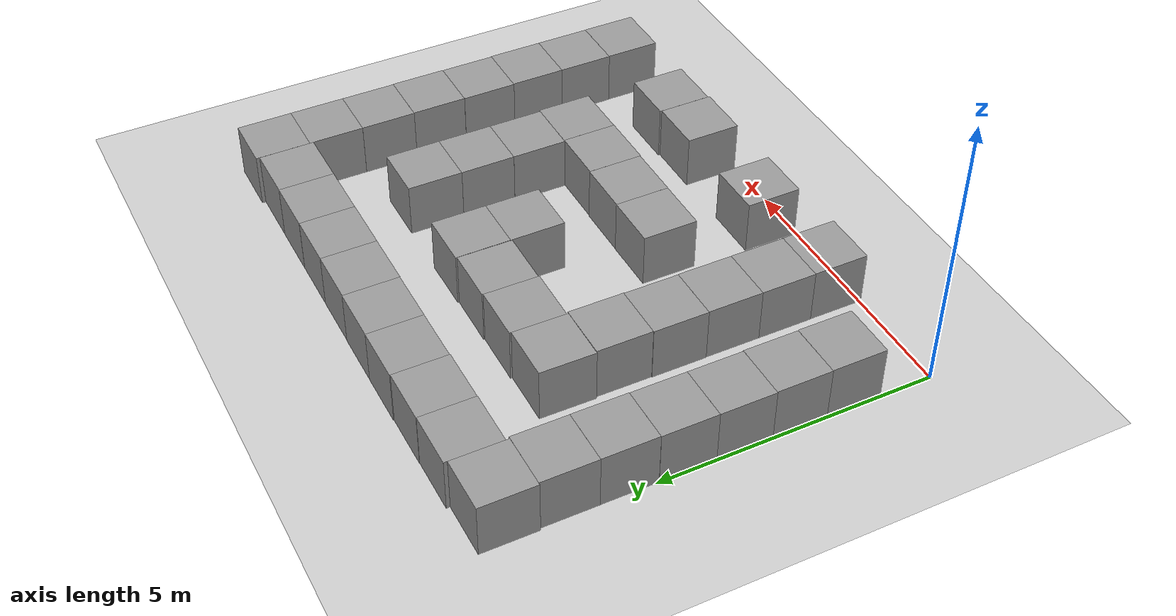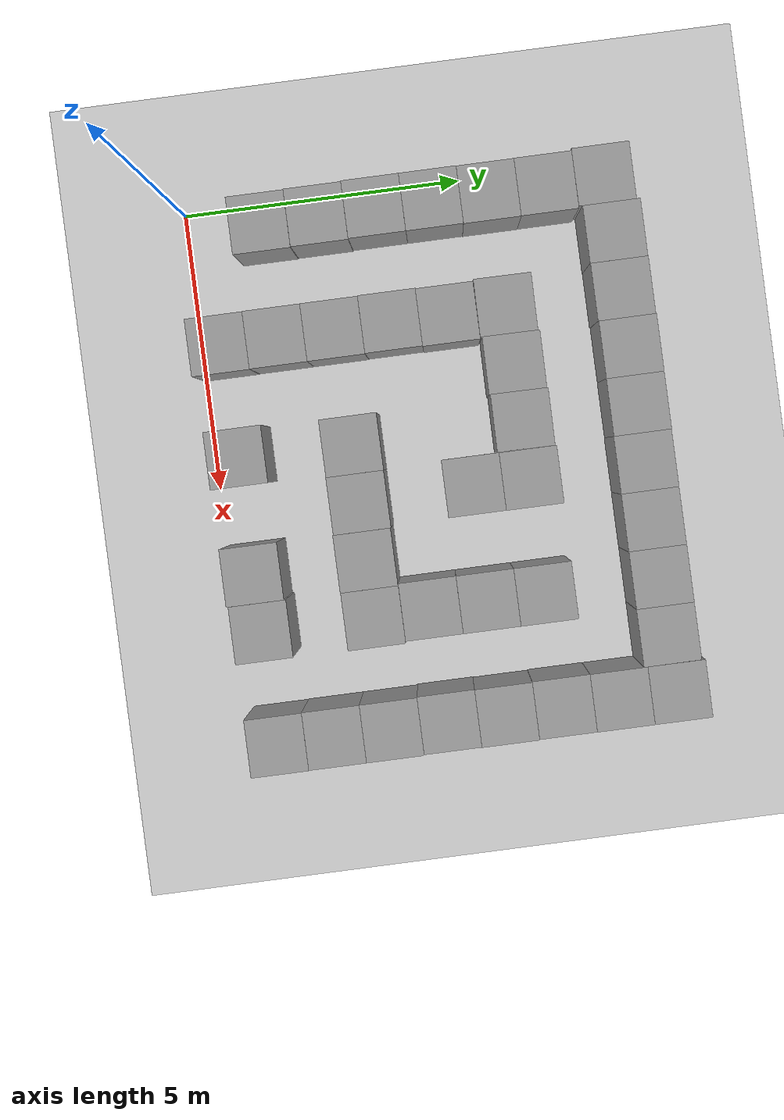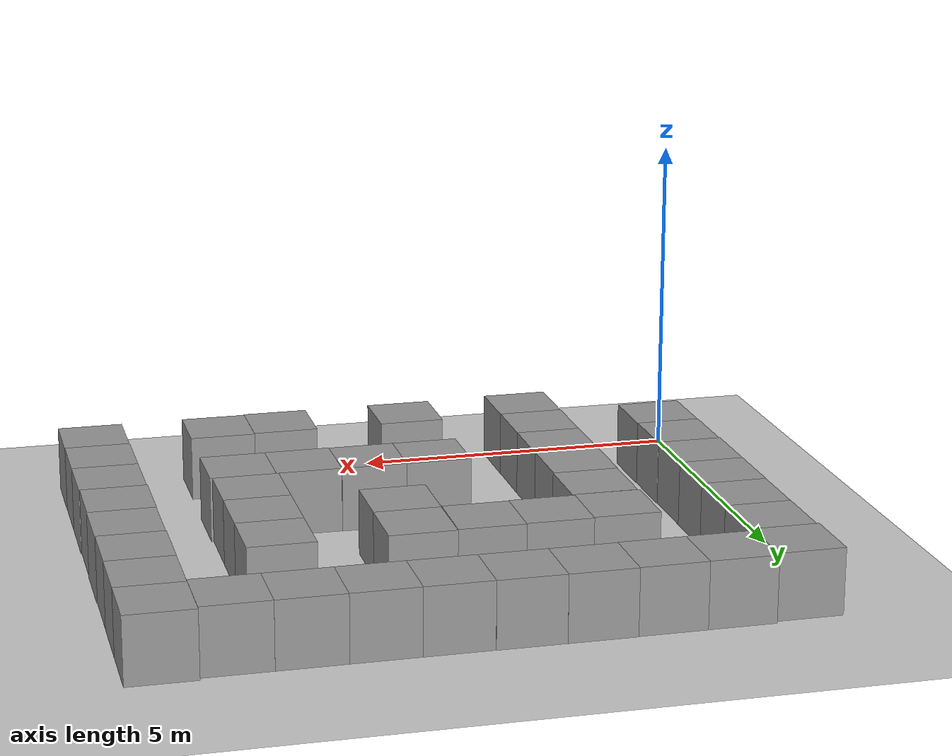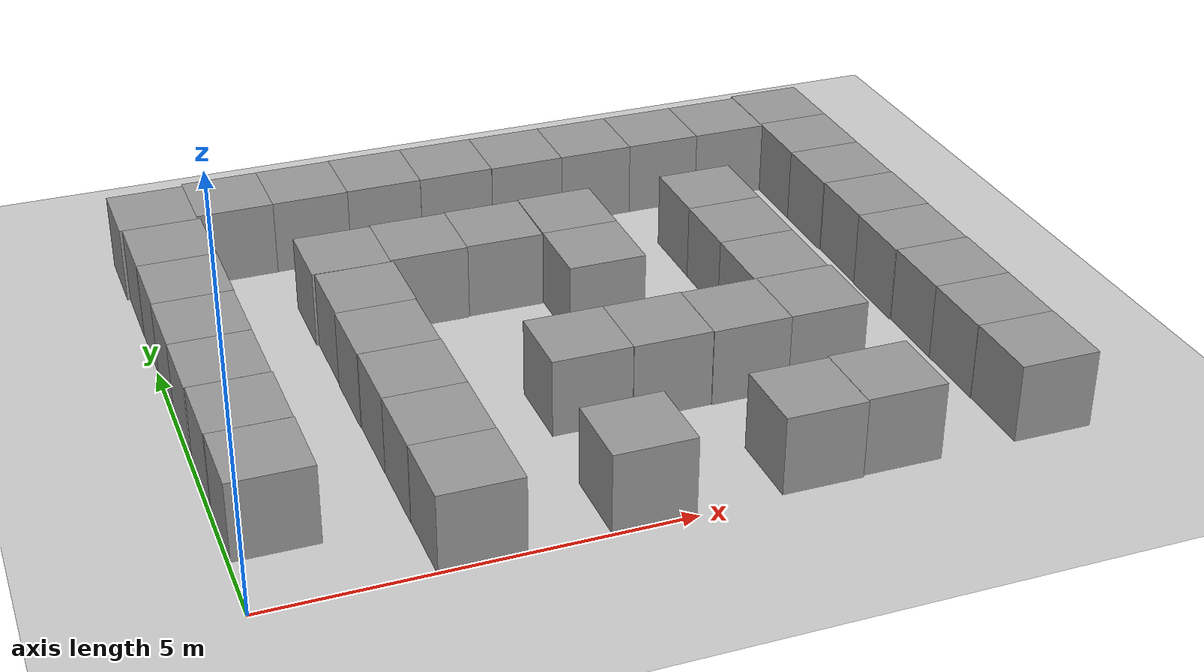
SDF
<sdf version="1.7">
 <world name="default">
  <model name="ground_plane">
   <static>1</static>
   <link name="link">
    <collision name="collision">
     <geometry><plane><normal>0 0 1</normal><size>100 100</size></plane></geometry>
     <surface>
      <contact><collide_bitmask>65535</collide_bitmask></contact>
      <friction><ode><mu>100</mu><mu2>50</mu2></ode></friction>
     </surface>
    </collision>
    <visual name="visual">
     <cast_shadows>0</cast_shadows>
     <geometry><plane><normal>0 0 1</normal><size>100 100</size></plane></geometry>
     <material>
      <script><uri>file://media/materials/scripts/gazebo.material</uri><name>Gazebo/Grey</name></script>
     </material>
    </visual>
   </link>
  </model>
  <model name="unit_box">
   <pose>0.523843 1.43762 0.499995 -0 1e-05 -0.001797</pose>
   <link name="link">
    <inertial>
     <mass>1</mass>
     <inertia>
      <ixx>0.166667</ixx>
      <ixy>0</ixy>
      <ixz>0</ixz>
      <iyy>0.166667</iyy>
      <iyz>0</iyz>
      <izz>0.166667</izz>
     </inertia>
    </inertial>
    <collision name="collision"><geometry><box><size>1 1 1</size></box></geometry></collision>
    <visual name="visual">
     <geometry><box><size>1 1 1</size></box></geometry>
     <material>
      <script><name>Gazebo/Grey</name><uri>file://media/materials/scripts/gazebo.material</uri></script>
     </material>
    </visual>
   </link>
  </model>
  <model name="unit_box_0">
   <pose>0.51592 2.43837 0.499995 -1e-05 -0 -0.000324</pose>
   <link name="link">
    <inertial>
     <mass>1</mass>
     <inertia>
      <ixx>0.166667</ixx>
      <ixy>0</ixy>
      <ixz>0</ixz>
      <iyy>0.166667</iyy>
      <iyz>0</iyz>
      <izz>0.166667</izz>
     </inertia>
    </inertial>
    <collision name="collision"><geometry><box><size>1 1 1</size></box></geometry></collision>
    <visual name="visual">
     <geometry><box><size>1 1 1</size></box></geometry>
     <material>
      <script><name>Gazebo/Grey</name><uri>file://media/materials/scripts/gazebo.material</uri></script>
     </material>
    </visual>
   </link>
  </model>
  <model name="unit_box_1">
   <pose>0.502584 3.43857 0.499995 1e-05 -0 0.000103</pose>
   <link name="link">
    <inertial>
     <mass>1</mass>
     <inertia>
      <ixx>0.166667</ixx>
      <ixy>0</ixy>
      <ixz>0</ixz>
      <iyy>0.166667</iyy>
      <iyz>0</iyz>
      <izz>0.166667</izz>
     </inertia>
    </inertial>
    <collision name="collision"><geometry><box><size>1 1 1</size></box></geometry></collision>
    <visual name="visual">
     <geometry><box><size>1 1 1</size></box></geometry>
     <material>
      <script><name>Gazebo/Grey</name><uri>file://media/materials/scripts/gazebo.material</uri></script>
     </material>
    </visual>
   </link>
  </model>
  <model name="unit_box_1_clone">
   <pose>0.502381 4.43871 0.499995 -1e-05 -0 0.000359</pose>
   <link name="link">
    <inertial>
     <mass>1</mass>
     <inertia>
      <ixx>0.166667</ixx>
      <ixy>0</ixy>
      <ixz>0</ixz>
      <iyy>0.166667</iyy>
      <iyz>0</iyz>
      <izz>0.166667</izz>
     </inertia>
    </inertial>
    <collision name="collision"><geometry><box><size>1 1 1</size></box></geometry></collision>
    <visual name="visual">
     <geometry><box><size>1 1 1</size></box></geometry>
     <material>
      <script><name>Gazebo/Grey</name><uri>file://media/materials/scripts/gazebo.material</uri></script>
     </material>
    </visual>
   </link>
  </model>
  <model name="unit_box_1_clone_0">
   <pose>0.507179 5.4388 0.499995 0 1e-05 0.000533</pose>
   <link name="link">
    <inertial>
     <mass>1</mass>
     <inertia>
      <ixx>0.166667</ixx>
      <ixy>0</ixy>
      <ixz>0</ixz>
      <iyy>0.166667</iyy>
      <iyz>0</iyz>
      <izz>0.166667</izz>
     </inertia>
    </inertial>
    <collision name="collision"><geometry><box><size>1 1 1</size></box></geometry></collision>
    <visual name="visual">
     <geometry><box><size>1 1 1</size></box></geometry>
     <material>
      <script><name>Gazebo/Grey</name><uri>file://media/materials/scripts/gazebo.material</uri></script>
     </material>
    </visual>
   </link>
  </model>
  <model name="unit_box_1_clone_1">
   <pose>0.503423 6.43895 0.499995 -0 1e-05 0.000821</pose>
   <link name="link">
    <inertial>
     <mass>1</mass>
     <inertia>
      <ixx>0.166667</ixx>
      <ixy>0</ixy>
      <ixz>0</ixz>
      <iyy>0.166667</iyy>
      <iyz>0</iyz>
      <izz>0.166667</izz>
     </inertia>
    </inertial>
    <collision name="collision"><geometry><box><size>1 1 1</size></box></geometry></collision>
    <visual name="visual">
     <geometry><box><size>1 1 1</size></box></geometry>
     <material>
      <script><name>Gazebo/Grey</name><uri>file://media/materials/scripts/gazebo.material</uri></script>
     </material>
    </visual>
   </link>
  </model>
  <model name="unit_box_1_clone_2">
   <pose>0.465265 7.43924 0.499995 0 -1e-05 0.001497</pose>
   <link name="link">
    <inertial>
     <mass>1</mass>
     <inertia>
      <ixx>0.166667</ixx>
      <ixy>0</ixy>
      <ixz>0</ixz>
      <iyy>0.166667</iyy>
      <iyz>0</iyz>
      <izz>0.166667</izz>
     </inertia>
    </inertial>
    <collision name="collision"><geometry><box><size>1 1 1</size></box></geometry></collision>
    <visual name="visual">
     <geometry><box><size>1 1 1</size></box></geometry>
     <material>
      <script><name>Gazebo/Grey</name><uri>file://media/materials/scripts/gazebo.material</uri></script>
     </material>
    </visual>
   </link>
  </model>
  <model name="unit_box_1_clone_3">
   <pose>1.46517 7.50421 0.499995 0 -1e-05 0.0015</pose>
   <link name="link">
    <inertial>
     <mass>1</mass>
     <inertia>
      <ixx>0.166667</ixx>
      <ixy>0</ixy>
      <ixz>0</ixz>
      <iyy>0.166667</iyy>
      <iyz>0</iyz>
      <izz>0.166667</izz>
     </inertia>
    </inertial>
    <collision name="collision"><geometry><box><size>1 1 1</size></box></geometry></collision>
    <visual name="visual">
     <geometry><box><size>1 1 1</size></box></geometry>
     <material>
      <script><name>Gazebo/Grey</name><uri>file://media/materials/scripts/gazebo.material</uri></script>
     </material>
    </visual>
   </link>
  </model>
  <model name="unit_box_1_clone_4">
   <pose>2.46519 7.51072 0.499995 -1e-05 -0 0.001513</pose>
   <link name="link">
    <inertial>
     <mass>1</mass>
     <inertia>
      <ixx>0.166667</ixx>
      <ixy>0</ixy>
      <ixz>0</ixz>
      <iyy>0.166667</iyy>
      <iyz>0</iyz>
      <izz>0.166667</izz>
     </inertia>
    </inertial>
    <collision name="collision"><geometry><box><size>1 1 1</size></box></geometry></collision>
    <visual name="visual">
     <geometry><box><size>1 1 1</size></box></geometry>
     <material>
      <script><name>Gazebo/Grey</name><uri>file://media/materials/scripts/gazebo.material</uri></script>
     </material>
    </visual>
   </link>
  </model>
  <model name="unit_box_1_clone_5">
   <pose>3.46517 7.52323 0.499995 1e-05 -0 0.001513</pose>
   <link name="link">
    <inertial>
     <mass>1</mass>
     <inertia>
      <ixx>0.166667</ixx>
      <ixy>0</ixy>
      <ixz>0</ixz>
      <iyy>0.166667</iyy>
      <iyz>0</iyz>
      <izz>0.166667</izz>
     </inertia>
    </inertial>
    <collision name="collision"><geometry><box><size>1 1 1</size></box></geometry></collision>
    <visual name="visual">
     <geometry><box><size>1 1 1</size></box></geometry>
     <material>
      <script><name>Gazebo/Grey</name><uri>file://media/materials/scripts/gazebo.material</uri></script>
     </material>
    </visual>
   </link>
  </model>
  <model name="unit_box_1_clone_6">
   <pose>4.46518 7.52269 0.499995 -1e-05 -0 0.001515</pose>
   <link name="link">
    <inertial>
     <mass>1</mass>
     <inertia>
      <ixx>0.166667</ixx>
      <ixy>0</ixy>
      <ixz>0</ixz>
      <iyy>0.166667</iyy>
      <iyz>0</iyz>
      <izz>0.166667</izz>
     </inertia>
    </inertial>
    <collision name="collision"><geometry><box><size>1 1 1</size></box></geometry></collision>
    <visual name="visual">
     <geometry><box><size>1 1 1</size></box></geometry>
     <material>
      <script><name>Gazebo/Grey</name><uri>file://media/materials/scripts/gazebo.material</uri></script>
     </material>
    </visual>
   </link>
  </model>
  <model name="unit_box_1_clone_7">
   <pose>5.46519 7.51844 0.5 0 -0 0.001516</pose>
   <link name="link">
    <inertial>
     <mass>1</mass>
     <inertia>
      <ixx>0.166667</ixx>
      <ixy>0</ixy>
      <ixz>0</ixz>
      <iyy>0.166667</iyy>
      <iyz>0</iyz>
      <izz>0.166667</izz>
     </inertia>
    </inertial>
    <collision name="collision"><geometry><box><size>1 1 1</size></box></geometry></collision>
    <visual name="visual">
     <geometry><box><size>1 1 1</size></box></geometry>
     <material>
      <script><name>Gazebo/Grey</name><uri>file://media/materials/scripts/gazebo.material</uri></script>
     </material>
    </visual>
   </link>
  </model>
  <model name="unit_box_1_clone_8">
   <pose>6.46521 7.51815 0.5 0 -0 0.001527</pose>
   <link name="link">
    <inertial>
     <mass>1</mass>
     <inertia>
      <ixx>0.166667</ixx>
      <ixy>0</ixy>
      <ixz>0</ixz>
      <iyy>0.166667</iyy>
      <iyz>0</iyz>
      <izz>0.166667</izz>
     </inertia>
    </inertial>
    <collision name="collision"><geometry><box><size>1 1 1</size></box></geometry></collision>
    <visual name="visual">
     <geometry><box><size>1 1 1</size></box></geometry>
     <material>
      <script><name>Gazebo/Grey</name><uri>file://media/materials/scripts/gazebo.material</uri></script>
     </material>
    </visual>
   </link>
  </model>
  <model name="unit_box_1_clone_9">
   <pose>7.46521 7.52093 0.499995 0 1e-05 0.001526</pose>
   <link name="link">
    <inertial>
     <mass>1</mass>
     <inertia>
      <ixx>0.166667</ixx>
      <ixy>0</ixy>
      <ixz>0</ixz>
      <iyy>0.166667</iyy>
      <iyz>0</iyz>
      <izz>0.166667</izz>
     </inertia>
    </inertial>
    <collision name="collision"><geometry><box><size>1 1 1</size></box></geometry></collision>
    <visual name="visual">
     <geometry><box><size>1 1 1</size></box></geometry>
     <material>
      <script><name>Gazebo/Grey</name><uri>file://media/materials/scripts/gazebo.material</uri></script>
     </material>
    </visual>
   </link>
  </model>
  <model name="unit_box_1_clone_10">
   <pose>8.46521 7.52111 0.5 0 -0 0.001526</pose>
   <link name="link">
    <inertial>
     <mass>1</mass>
     <inertia>
      <ixx>0.166667</ixx>
      <ixy>0</ixy>
      <ixz>0</ixz>
      <iyy>0.166667</iyy>
      <iyz>0</iyz>
      <izz>0.166667</izz>
     </inertia>
    </inertial>
    <collision name="collision"><geometry><box><size>1 1 1</size></box></geometry></collision>
    <visual name="visual">
     <geometry><box><size>1 1 1</size></box></geometry>
     <material>
      <script><name>Gazebo/Grey</name><uri>file://media/materials/scripts/gazebo.material</uri></script>
     </material>
    </visual>
   </link>
  </model>
  <model name="unit_box_1_clone_11">
   <pose>9.46658 7.58547 0.499995 -9e-06 -0 -0.001161</pose>
   <link name="link">
    <inertial>
     <mass>1</mass>
     <inertia>
      <ixx>0.166667</ixx>
      <ixy>0</ixy>
      <ixz>0</ixz>
      <iyy>0.166667</iyy>
      <iyz>0</iyz>
      <izz>0.166667</izz>
     </inertia>
    </inertial>
    <collision name="collision"><geometry><box><size>1 1 1</size></box></geometry></collision>
    <visual name="visual">
     <geometry><box><size>1 1 1</size></box></geometry>
     <material>
      <script><name>Gazebo/Grey</name><uri>file://media/materials/scripts/gazebo.material</uri></script>
     </material>
    </visual>
   </link>
  </model>
  <model name="unit_box_1_clone_12">
   <pose>9.46679 6.58546 0.499995 1e-05 0 -0.001158</pose>
   <link name="link">
    <inertial>
     <mass>1</mass>
     <inertia>
      <ixx>0.166667</ixx>
      <ixy>0</ixy>
      <ixz>0</ixz>
      <iyy>0.166667</iyy>
      <iyz>0</iyz>
      <izz>0.166667</izz>
     </inertia>
    </inertial>
    <collision name="collision"><geometry><box><size>1 1 1</size></box></geometry></collision>
    <visual name="visual">
     <geometry><box><size>1 1 1</size></box></geometry>
     <material>
      <script><name>Gazebo/Grey</name><uri>file://media/materials/scripts/gazebo.material</uri></script>
     </material>
    </visual>
   </link>
  </model>
  <model name="unit_box_1_clone_13">
   <pose>9.46354 5.58546 0.499995 -1e-05 -0 -0.001161</pose>
   <link name="link">
    <inertial>
     <mass>1</mass>
     <inertia>
      <ixx>0.166667</ixx>
      <ixy>0</ixy>
      <ixz>0</ixz>
      <iyy>0.166667</iyy>
      <iyz>0</iyz>
      <izz>0.166667</izz>
     </inertia>
    </inertial>
    <collision name="collision"><geometry><box><size>1 1 1</size></box></geometry></collision>
    <visual name="visual">
     <geometry><box><size>1 1 1</size></box></geometry>
     <material>
      <script><name>Gazebo/Grey</name><uri>file://media/materials/scripts/gazebo.material</uri></script>
     </material>
    </visual>
   </link>
  </model>
  <model name="unit_box_1_clone_14">
   <pose>9.47212 4.58544 0.499995 1e-05 -0 -0.001162</pose>
   <link name="link">
    <inertial>
     <mass>1</mass>
     <inertia>
      <ixx>0.166667</ixx>
      <ixy>0</ixy>
      <ixz>0</ixz>
      <iyy>0.166667</iyy>
      <iyz>0</iyz>
      <izz>0.166667</izz>
     </inertia>
    </inertial>
    <collision name="collision"><geometry><box><size>1 1 1</size></box></geometry></collision>
    <visual name="visual">
     <geometry><box><size>1 1 1</size></box></geometry>
     <material>
      <script><name>Gazebo/Grey</name><uri>file://media/materials/scripts/gazebo.material</uri></script>
     </material>
    </visual>
   </link>
  </model>
  <model name="unit_box_1_clone_15">
   <pose>9.46479 3.58545 0.499995 -1e-05 -0 -0.001165</pose>
   <link name="link">
    <inertial>
     <mass>1</mass>
     <inertia>
      <ixx>0.166667</ixx>
      <ixy>0</ixy>
      <ixz>0</ixz>
      <iyy>0.166667</iyy>
      <iyz>0</iyz>
      <izz>0.166667</izz>
     </inertia>
    </inertial>
    <collision name="collision"><geometry><box><size>1 1 1</size></box></geometry></collision>
    <visual name="visual">
     <geometry><box><size>1 1 1</size></box></geometry>
     <material>
      <script><name>Gazebo/Grey</name><uri>file://media/materials/scripts/gazebo.material</uri></script>
     </material>
    </visual>
   </link>
  </model>
  <model name="unit_box_1_clone_16">
   <pose>9.47716 2.5854 0.499995 1e-05 -0 -0.001211</pose>
   <link name="link">
    <inertial>
     <mass>1</mass>
     <inertia>
      <ixx>0.166667</ixx>
      <ixy>0</ixy>
      <ixz>0</ixz>
      <iyy>0.166667</iyy>
      <iyz>0</iyz>
      <izz>0.166667</izz>
     </inertia>
    </inertial>
    <collision name="collision"><geometry><box><size>1 1 1</size></box></geometry></collision>
    <visual name="visual">
     <geometry><box><size>1 1 1</size></box></geometry>
     <material>
      <script><name>Gazebo/Grey</name><uri>file://media/materials/scripts/gazebo.material</uri></script>
     </material>
    </visual>
   </link>
  </model>
  <model name="unit_box_1_clone_17">
   <pose>9.47667 1.5854 0.5 -0 -0 -0.001215</pose>
   <link name="link">
    <inertial>
     <mass>1</mass>
     <inertia>
      <ixx>0.166667</ixx>
      <ixy>0</ixy>
      <ixz>0</ixz>
      <iyy>0.166667</iyy>
      <iyz>0</iyz>
      <izz>0.166667</izz>
     </inertia>
    </inertial>
    <collision name="collision"><geometry><box><size>1 1 1</size></box></geometry></collision>
    <visual name="visual">
     <geometry><box><size>1 1 1</size></box></geometry>
     <material>
      <script><name>Gazebo/Grey</name><uri>file://media/materials/scripts/gazebo.material</uri></script>
     </material>
    </visual>
   </link>
  </model>
  <model name="unit_box_1_clone_18">
   <pose>9.48065 0.585287 0.5 0 0 -0.001435</pose>
   <link name="link">
    <inertial>
     <mass>1</mass>
     <inertia>
      <ixx>0.166667</ixx>
      <ixy>0</ixy>
      <ixz>0</ixz>
      <iyy>0.166667</iyy>
      <iyz>0</iyz>
      <izz>0.166667</izz>
     </inertia>
    </inertial>
    <collision name="collision"><geometry><box><size>1 1 1</size></box></geometry></collision>
    <visual name="visual">
     <geometry><box><size>1 1 1</size></box></geometry>
     <material>
      <script><name>Gazebo/Grey</name><uri>file://media/materials/scripts/gazebo.material</uri></script>
     </material>
    </visual>
   </link>
  </model>
  <model name="unit_box_1_clone_41">
   <pose>2.50651 1.46821 0.5 0 -0 0.000442</pose>
   <link name="link">
    <inertial>
     <mass>1</mass>
     <inertia>
      <ixx>0.166667</ixx>
      <ixy>0</ixy>
      <ixz>0</ixz>
      <iyy>0.166667</iyy>
      <iyz>0</iyz>
      <izz>0.166667</izz>
     </inertia>
    </inertial>
    <collision name="collision"><geometry><box><size>1 1 1</size></box></geometry></collision>
    <visual name="visual">
     <geometry><box><size>1 1 1</size></box></geometry>
     <material>
      <script><name>Gazebo/Grey</name><uri>file://media/materials/scripts/gazebo.material</uri></script>
     </material>
    </visual>
   </link>
  </model>
  <model name="unit_box_1_clone_42">
   <pose>2.51155 0.468203 0.499995 1e-05 -0 0.000443</pose>
   <link name="link">
    <inertial>
     <mass>1</mass>
     <inertia>
      <ixx>0.166667</ixx>
      <ixy>0</ixy>
      <ixz>0</ixz>
      <iyy>0.166667</iyy>
      <iyz>0</iyz>
      <izz>0.166667</izz>
     </inertia>
    </inertial>
    <collision name="collision"><geometry><box><size>1 1 1</size></box></geometry></collision>
    <visual name="visual">
     <geometry><box><size>1 1 1</size></box></geometry>
     <material>
      <script><name>Gazebo/Grey</name><uri>file://media/materials/scripts/gazebo.material</uri></script>
     </material>
    </visual>
   </link>
  </model>
  <model name="unit_box_1_clone_43">
   <pose>2.50503 2.46829 0.499995 -0 -1e-05 0.000298</pose>
   <link name="link">
    <inertial>
     <mass>1</mass>
     <inertia>
      <ixx>0.166667</ixx>
      <ixy>0</ixy>
      <ixz>0</ixz>
      <iyy>0.166667</iyy>
      <iyz>0</iyz>
      <izz>0.166667</izz>
     </inertia>
    </inertial>
    <collision name="collision"><geometry><box><size>1 1 1</size></box></geometry></collision>
    <visual name="visual">
     <geometry><box><size>1 1 1</size></box></geometry>
     <material>
      <script><name>Gazebo/Grey</name><uri>file://media/materials/scripts/gazebo.material</uri></script>
     </material>
    </visual>
   </link>
  </model>
  <model name="unit_box_1_clone_44">
   <pose>2.49685 3.46844 0.499995 0 1e-05 -3e-06</pose>
   <link name="link">
    <inertial>
     <mass>1</mass>
     <inertia>
      <ixx>0.166667</ixx>
      <ixy>0</ixy>
      <ixz>0</ixz>
      <iyy>0.166667</iyy>
      <iyz>0</iyz>
      <izz>0.166667</izz>
     </inertia>
    </inertial>
    <collision name="collision"><geometry><box><size>1 1 1</size></box></geometry></collision>
    <visual name="visual">
     <geometry><box><size>1 1 1</size></box></geometry>
     <material>
      <script><name>Gazebo/Grey</name><uri>file://media/materials/scripts/gazebo.material</uri></script>
     </material>
    </visual>
   </link>
  </model>
  <model name="unit_box_1_clone_45">
   <pose>2.50669 4.46848 0.499995 -1e-05 -0 -2.8e-05</pose>
   <link name="link">
    <inertial>
     <mass>1</mass>
     <inertia>
      <ixx>0.166667</ixx>
      <ixy>0</ixy>
      <ixz>0</ixz>
      <iyy>0.166667</iyy>
      <iyz>0</iyz>
      <izz>0.166667</izz>
     </inertia>
    </inertial>
    <collision name="collision"><geometry><box><size>1 1 1</size></box></geometry></collision>
    <visual name="visual">
     <geometry><box><size>1 1 1</size></box></geometry>
     <material>
      <script><name>Gazebo/Grey</name><uri>file://media/materials/scripts/gazebo.material</uri></script>
     </material>
    </visual>
   </link>
  </model>
  <model name="unit_box_1_clone_46">
   <pose>2.47881 5.47315 0.499995 -1e-05 -0 -0.007284</pose>
   <link name="link">
    <inertial>
     <mass>1</mass>
     <inertia>
      <ixx>0.166667</ixx>
      <ixy>0</ixy>
      <ixz>0</ixz>
      <iyy>0.166667</iyy>
      <iyz>0</iyz>
      <izz>0.166667</izz>
     </inertia>
    </inertial>
    <collision name="collision"><geometry><box><size>1 1 1</size></box></geometry></collision>
    <visual name="visual">
     <geometry><box><size>1 1 1</size></box></geometry>
     <material>
      <script><name>Gazebo/Grey</name><uri>file://media/materials/scripts/gazebo.material</uri></script>
     </material>
    </visual>
   </link>
  </model>
  <model name="unit_box_1_clone_47">
   <pose>3.47902 5.49635 0.499995 0 1e-05 -0.007284</pose>
   <link name="link">
    <inertial>
     <mass>1</mass>
     <inertia>
      <ixx>0.166667</ixx>
      <ixy>0</ixy>
      <ixz>0</ixz>
      <iyy>0.166667</iyy>
      <iyz>0</iyz>
      <izz>0.166667</izz>
     </inertia>
    </inertial>
    <collision name="collision"><geometry><box><size>1 1 1</size></box></geometry></collision>
    <visual name="visual">
     <geometry><box><size>1 1 1</size></box></geometry>
     <material>
      <script><name>Gazebo/Grey</name><uri>file://media/materials/scripts/gazebo.material</uri></script>
     </material>
    </visual>
   </link>
  </model>
  <model name="unit_box_1_clone_48">
   <pose>4.47913 5.50859 0.499995 0 -1e-05 -0.007277</pose>
   <link name="link">
    <inertial>
     <mass>1</mass>
     <inertia>
      <ixx>0.166667</ixx>
      <ixy>0</ixy>
      <ixz>0</ixz>
      <iyy>0.166667</iyy>
      <iyz>0</iyz>
      <izz>0.166667</izz>
     </inertia>
    </inertial>
    <collision name="collision"><geometry><box><size>1 1 1</size></box></geometry></collision>
    <visual name="visual">
     <geometry><box><size>1 1 1</size></box></geometry>
     <material>
      <script><name>Gazebo/Grey</name><uri>file://media/materials/scripts/gazebo.material</uri></script>
     </material>
    </visual>
   </link>
  </model>
  <model name="unit_box_1_clone_50">
   <pose>5.48752 5.52909 0.499995 -1e-05 -0 -0.000129</pose>
   <link name="link">
    <inertial>
     <mass>1</mass>
     <inertia>
      <ixx>0.166667</ixx>
      <ixy>0</ixy>
      <ixz>0</ixz>
      <iyy>0.166667</iyy>
      <iyz>0</iyz>
      <izz>0.166667</izz>
     </inertia>
    </inertial>
    <collision name="collision"><geometry><box><size>1 1 1</size></box></geometry></collision>
    <visual name="visual">
     <geometry><box><size>1 1 1</size></box></geometry>
     <material>
      <script><name>Gazebo/Grey</name><uri>file://media/materials/scripts/gazebo.material</uri></script>
     </material>
    </visual>
   </link>
  </model>
  <model name="unit_box_1_clone_52">
   <pose>7.49175 3.52069 0.499995 -1e-05 -0 9.4e-05</pose>
   <link name="link">
    <inertial>
     <mass>1</mass>
     <inertia>
      <ixx>0.166667</ixx>
      <ixy>0</ixy>
      <ixz>0</ixz>
      <iyy>0.166667</iyy>
      <iyz>0</iyz>
      <izz>0.166667</izz>
     </inertia>
    </inertial>
    <collision name="collision"><geometry><box><size>1 1 1</size></box></geometry></collision>
    <visual name="visual">
     <geometry><box><size>1 1 1</size></box></geometry>
     <material>
      <script><name>Gazebo/Grey</name><uri>file://media/materials/scripts/gazebo.material</uri></script>
     </material>
    </visual>
   </link>
  </model>
  <model name="unit_box_1_clone_51">
   <pose>7.4925 4.52086 0.499995 -1e-05 0 -4e-06</pose>
   <link name="link">
    <inertial>
     <mass>1</mass>
     <inertia>
      <ixx>0.166667</ixx>
      <ixy>0</ixy>
      <ixz>0</ixz>
      <iyy>0.166667</iyy>
      <iyz>0</iyz>
      <izz>0.166667</izz>
     </inertia>
    </inertial>
    <collision name="collision"><geometry><box><size>1 1 1</size></box></geometry></collision>
    <visual name="visual">
     <geometry><box><size>1 1 1</size></box></geometry>
     <material>
      <script><name>Gazebo/Grey</name><uri>file://media/materials/scripts/gazebo.material</uri></script>
     </material>
    </visual>
   </link>
  </model>
  <model name="unit_box_1_clone_49">
   <pose>7.49351 5.52085 0.499995 1e-05 -0 -4e-06</pose>
   <link name="link">
    <inertial>
     <mass>1</mass>
     <inertia>
      <ixx>0.166667</ixx>
      <ixy>0</ixy>
      <ixz>0</ixz>
      <iyy>0.166667</iyy>
      <iyz>0</iyz>
      <izz>0.166667</izz>
     </inertia>
    </inertial>
    <collision name="collision"><geometry><box><size>1 1 1</size></box></geometry></collision>
    <visual name="visual">
     <geometry><box><size>1 1 1</size></box></geometry>
     <material>
      <script><name>Gazebo/Grey</name><uri>file://media/materials/scripts/gazebo.material</uri></script>
     </material>
    </visual>
   </link>
  </model>
  <model name="unit_box_1_clone_55">
   <pose>7.52723 2.51968 0.499995 0 1e-05 0.000837</pose>
   <link name="link">
    <inertial>
     <mass>1</mass>
     <inertia>
      <ixx>0.166667</ixx>
      <ixy>0</ixy>
      <ixz>0</ixz>
      <iyy>0.166667</iyy>
      <iyz>0</iyz>
      <izz>0.166667</izz>
     </inertia>
    </inertial>
    <collision name="collision"><geometry><box><size>1 1 1</size></box></geometry></collision>
    <visual name="visual">
     <geometry><box><size>1 1 1</size></box></geometry>
     <material>
      <script><name>Gazebo/Grey</name><uri>file://media/materials/scripts/gazebo.material</uri></script>
     </material>
    </visual>
   </link>
  </model>
  <model name="unit_box_1_clone_56">
   <pose>6.52693 2.51473 0.499995 1e-05 -0 0.000826</pose>
   <link name="link">
    <inertial>
     <mass>1</mass>
     <inertia>
      <ixx>0.166667</ixx>
      <ixy>0</ixy>
      <ixz>0</ixz>
      <iyy>0.166667</iyy>
      <iyz>0</iyz>
      <izz>0.166667</izz>
     </inertia>
    </inertial>
    <collision name="collision"><geometry><box><size>1 1 1</size></box></geometry></collision>
    <visual name="visual">
     <geometry><box><size>1 1 1</size></box></geometry>
     <material>
      <script><name>Gazebo/Grey</name><uri>file://media/materials/scripts/gazebo.material</uri></script>
     </material>
    </visual>
   </link>
  </model>
  <model name="unit_box_1_clone_57">
   <pose>7.51646 0.572852 0.499995 1e-05 -0 -0.000189</pose>
   <link name="link">
    <inertial>
     <mass>1</mass>
     <inertia>
      <ixx>0.166667</ixx>
      <ixy>0</ixy>
      <ixz>0</ixz>
      <iyy>0.166667</iyy>
      <iyz>0</iyz>
      <izz>0.166667</izz>
     </inertia>
    </inertial>
    <collision name="collision"><geometry><box><size>1 1 1</size></box></geometry></collision>
    <visual name="visual">
     <geometry><box><size>1 1 1</size></box></geometry>
     <material>
      <script><name>Gazebo/Grey</name><uri>file://media/materials/scripts/gazebo.material</uri></script>
     </material>
    </visual>
   </link>
  </model>
  <model name="unit_box_1_clone_58">
   <pose>6.51574 0.54186 0.499995 1e-05 -0 -0.000708</pose>
   <link name="link">
    <inertial>
     <mass>1</mass>
     <inertia>
      <ixx>0.166667</ixx>
      <ixy>0</ixy>
      <ixz>0</ixz>
      <iyy>0.166667</iyy>
      <iyz>0</iyz>
      <izz>0.166667</izz>
     </inertia>
    </inertial>
    <collision name="collision"><geometry><box><size>1 1 1</size></box></geometry></collision>
    <visual name="visual">
     <geometry><box><size>1 1 1</size></box></geometry>
     <material>
      <script><name>Gazebo/Grey</name><uri>file://media/materials/scripts/gazebo.material</uri></script>
     </material>
    </visual>
   </link>
  </model>
  <model name="unit_box_1_clone_62">
   <pose>5.5265 2.52542 0.499995 0 -1e-05 0.001257</pose>
   <link name="link">
    <inertial>
     <mass>1</mass>
     <inertia>
      <ixx>0.166667</ixx>
      <ixy>0</ixy>
      <ixz>0</ixz>
      <iyy>0.166667</iyy>
      <iyz>0</iyz>
      <izz>0.166667</izz>
     </inertia>
    </inertial>
    <collision name="collision"><geometry><box><size>1 1 1</size></box></geometry></collision>
    <visual name="visual">
     <geometry><box><size>1 1 1</size></box></geometry>
     <material>
      <script><name>Gazebo/Grey</name><uri>file://media/materials/scripts/gazebo.material</uri></script>
     </material>
    </visual>
   </link>
  </model>
  <model name="unit_box_1_clone_64">
   <pose>4.52631 2.52873 0.499995 0 1e-05 0.001279</pose>
   <link name="link">
    <inertial>
     <mass>1</mass>
     <inertia>
      <ixx>0.166667</ixx>
      <ixy>0</ixy>
      <ixz>0</ixz>
      <iyy>0.166667</iyy>
      <iyz>0</iyz>
      <izz>0.166667</izz>
     </inertia>
    </inertial>
    <collision name="collision"><geometry><box><size>1 1 1</size></box></geometry></collision>
    <visual name="visual">
     <geometry><box><size>1 1 1</size></box></geometry>
     <material>
      <script><name>Gazebo/Grey</name><uri>file://media/materials/scripts/gazebo.material</uri></script>
     </material>
    </visual>
   </link>
  </model>
  <model name="unit_box_1_clone_63">
   <pose>5.48499 4.52909 0.499995 -1e-05 -0 -0.000129</pose>
   <link name="link">
    <inertial>
     <mass>1</mass>
     <inertia>
      <ixx>0.166667</ixx>
      <ixy>0</ixy>
      <ixz>0</ixz>
      <iyy>0.166667</iyy>
      <iyz>0</iyz>
      <izz>0.166667</izz>
     </inertia>
    </inertial>
    <collision name="collision"><geometry><box><size>1 1 1</size></box></geometry></collision>
    <visual name="visual">
     <geometry><box><size>1 1 1</size></box></geometry>
     <material>
      <script><name>Gazebo/Grey</name><uri>file://media/materials/scripts/gazebo.material</uri></script>
     </material>
    </visual>
   </link>
  </model>
  <model name="unit_box_1_clone_65">
   <pose>4.48242 0.531007 0.5 0 -0 0.001244</pose>
   <link name="link">
    <inertial>
     <mass>1</mass>
     <inertia>
      <ixx>0.166667</ixx>
      <ixy>0</ixy>
      <ixz>0</ixz>
      <iyy>0.166667</iyy>
      <iyz>0</iyz>
      <izz>0.166667</izz>
     </inertia>
    </inertial>
    <collision name="collision"><geometry><box><size>1 1 1</size></box></geometry></collision>
    <visual name="visual">
     <geometry><box><size>1 1 1</size></box></geometry>
     <material>
      <script><name>Gazebo/Grey</name><uri>file://media/materials/scripts/gazebo.material</uri></script>
     </material>
    </visual>
   </link>
  </model>
 </world>
</sdf>
